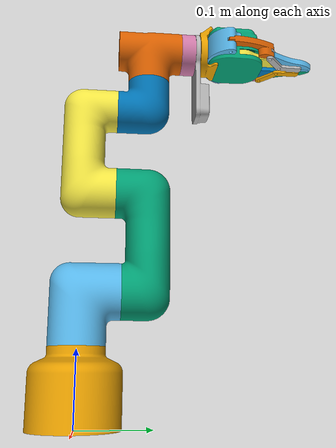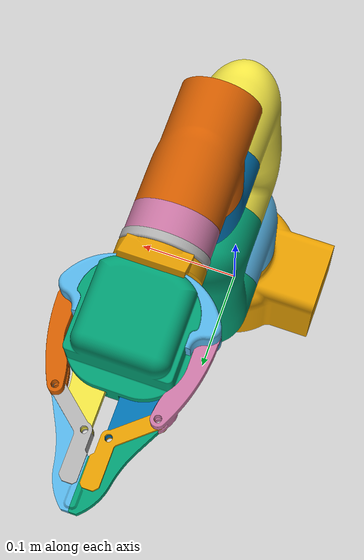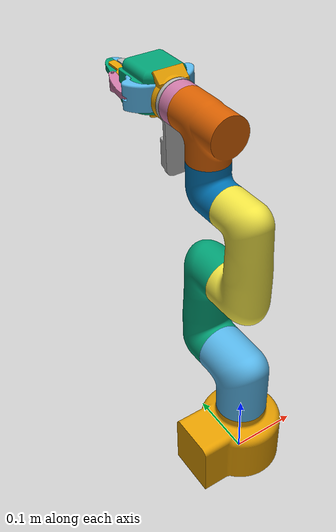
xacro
<?xml version="1.0"?>
<robot xmlns:xacro="http://www.ros.org/wiki/xacro" name="mycobot_320">
    <xacro:arg name="initial_positions_file" default="initial_positions.yaml" />

    <!-- Import mycobot_320 urdf file -->
    <xacro:include filename="$(find mycobot_with_gripper)/config/urdf/mycobot_320_m5_custom.urdf" />

    <!-- Import control_xacro -->
    <xacro:include filename="mycobot_320.ros2_control.xacro" />

    <xacro:mycobot_320_ros2_control name="FakeSystem" initial_positions_file="$(arg initial_positions_file)"/>

</robot>

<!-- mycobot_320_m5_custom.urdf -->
<robot  xmlns:xacro="http://www.ros.org/wiki/xacro" name="mycobot_320" >

<xacro:property name="width" value=".2" />

<link name="base">
  <visual>
    <geometry>
    <mesh filename="package://mycobot_with_gripper/config/urdf/base.stl"/>
    </geometry>
    <origin xyz="0 0 0" rpy="0 0 0"/>
  </visual>
  <collision>
    <geometry>
    <mesh filename="package://mycobot_with_gripper/config/urdf/base.stl"/>
      </geometry>
      <origin xyz="0 0 0" rpy="0 0 0"/>
  </collision>
</link>

<link name="link1">
  <visual>
    <geometry>
      <mesh filename="package://mycobot_with_gripper/config/urdf/link1.stl"/>
    </geometry>
    <origin xyz="0.0 0.0 -0.103" rpy="0 0 0"/>
  </visual>
  <collision>
    <geometry>
      <mesh filename="package://mycobot_with_gripper/config/urdf/link1.stl"/>
    </geometry>
    <origin xyz="0.0 0.0 -0.103" rpy="0 0 0"/>
  </collision>
</link>

<link name="link2">
  <visual>
    <geometry>
      <mesh filename="package://mycobot_with_gripper/config/urdf/link2.stl"/>
    </geometry>
    <origin xyz="0.0 -0.055 -0.1739" rpy="0 0 0"/>
  </visual>
  <collision>
    <geometry>
      <mesh filename="package://mycobot_with_gripper/config/urdf/link2.stl"/>
    </geometry>
    <origin xyz="0.0 -0.055 -0.1739" rpy="0 0 0"/>
  </collision>
</link>

<link name="link3">
  <visual>
    <geometry>
      <mesh filename="package://mycobot_with_gripper/config/urdf/link3.stl"/>
    </geometry>
    <origin xyz="0.0 -0.045 -0.3089" rpy="0 0 0"/>
  </visual>
  <collision>
    <geometry>
      <mesh filename="package://mycobot_with_gripper/config/urdf/link3.stl"/>
    </geometry>
    <origin xyz="0.0 -0.045 -0.3089" rpy="0 0 0"/>
  </collision>
</link>

<link name="link4">
  <visual>
    <geometry>
      <mesh filename="package://mycobot_with_gripper/config/urdf/link4.stl"/>
    </geometry>
    <origin xyz="0.0 -0.045 -0.4289" rpy="0 0 0"/>
  </visual>
  <collision>
      <geometry>
      <mesh filename="package://mycobot_with_gripper/config/urdf/link4.stl"/>
    </geometry>
    <origin xyz="0.0 -0.045 -0.4289" rpy="0 0 0"/>
  </collision>
</link>

<link name="link5">
  <visual>
    <geometry>
      <mesh filename="package://mycobot_with_gripper/config/urdf/link5.stl"/>
    </geometry>
    <origin xyz="0.0 -0.08878 -0.475" rpy="0 0 0"/>
  </visual>
  <collision>
    <geometry>
      <mesh filename="package://mycobot_with_gripper/config/urdf/link5.stl"/>
    </geometry>
    <origin xyz="0.0 -0.08878 -0.475" rpy="0 0 0"/>
  </collision>
</link>

<link name="link6">
  <visual>
    <geometry>
      <mesh filename="package://mycobot_with_gripper/config/urdf/link6.stl"/>
    </geometry>
    <origin xyz="0.0 -0.13428 -0.524" rpy="0 0 0"/>
  </visual>
  <collision>
    <geometry>
      <mesh filename="package://mycobot_with_gripper/config/urdf/link6.stl"/>
    </geometry>
    <origin xyz="0.0 -0.13428 -0.524" rpy="0 0 0"/>
  </collision>
</link>

<link name="camera">
  <visual>
    <origin xyz="0.0 0.0 0.0" rpy="-1.570796 0 1.570796"/>
    <geometry>
      <mesh filename="package://mycobot_with_gripper/config/urdf/camera.stl" />
    </geometry>
  </visual>
  <collision>
    <origin xyz="0.0 0.0 0.0" rpy="-1.570796 0 1.570796"/>
    <geometry>
      <mesh filename="package://mycobot_with_gripper/config/urdf/camera.stl"/>
    </geometry>
  </collision>
</link>

<link name="gripperlink">
  <visual>
    <origin xyz="0 0 0" rpy="1.570796 0 1.570796"/>
    <geometry>
      <mesh filename="package://mycobot_with_gripper/config/urdf/gripperlink.stl" />
    </geometry>
  </visual>
  <collision>
    <origin xyz="0 0 0" rpy="1.570796 0 1.570796"/>
    <geometry>
      <mesh filename="package://mycobot_with_gripper/config/urdf/gripperlink.stl" />
    </geometry>
  </collision>
</link>

<link name="gripper_holder">
  <visual>
    <origin xyz="0 0.043 -0.022" rpy="0 0 1.570796"/>
    <geometry>
      <mesh filename="package://mycobot_with_gripper/config/urdf/gripper_holder.stl" />
    </geometry>
  </visual>
  <collision>
    <origin xyz="0 0.043 -0.022" rpy="0 0 1.570796"/>
    <geometry>
      <mesh filename="package://mycobot_with_gripper/config/urdf/gripper_holder.stl" />
    </geometry>
  </collision>
</link>

<link name="hand_base_link">
  <visual>
    <origin xyz="0 0.04 -0.021" rpy="0 0 1.570796"/>
    <geometry>
      <mesh filename="package://mycobot_with_gripper/config/urdf/hand_base_link.stl" />
    </geometry>
  </visual>
  <collision>
    <origin xyz="0 0.04 -0.021" rpy="0 0 1.570796"/>
    <geometry>
      <mesh filename="package://mycobot_with_gripper/config/urdf/hand_base_link.stl" />
    </geometry>
  </collision>
</link>

<link name="hand_right_inside">
  <visual>
    <origin xyz="-0.019 -0.008 -0.006" rpy="3.141592 0 1.570796"/>
    <geometry>
      <mesh filename="package://mycobot_with_gripper/config/urdf/hand_right_inside.stl" />
    </geometry>
  </visual>
  <collision>
    <origin xyz="-0.019 -0.008 -0.006" rpy="3.141592 0 1.570796"/>
    <geometry>
      <mesh filename="package://mycobot_with_gripper/config/urdf/hand_right_inside.stl" />
    </geometry>
  </collision>
</link>

<link name="hand_left_inside">
  <visual>
    <origin xyz="0.019 -0.008 -0.006" rpy="0 0 1.570796"/>
    <geometry>
      <mesh filename="package://mycobot_with_gripper/config/urdf/hand_left_inside.stl" />
    </geometry>
  </visual>
  <collision>
    <origin xyz="0.019 -0.008 -0.006" rpy="0 0 1.570796"/>
    <geometry>
      <mesh filename="package://mycobot_with_gripper/config/urdf/hand_left_inside.stl" />
    </geometry>
  </collision>
</link>

<link name="hand_right_outside">
  <visual>
    <origin xyz="-0.045 0.014 -0.018" rpy="3.141592 0 1.570796"/>
    <geometry>
      <mesh filename="package://mycobot_with_gripper/config/urdf/hand_right_outside.stl" />
    </geometry>
  </visual>
  <collision>
    <origin xyz="-0.045 0.014 -0.018" rpy="3.141592 0 1.570796"/>
    <geometry>
      <mesh filename="package://mycobot_with_gripper/config/urdf/hand_right_outside.stl" />
    </geometry>
  </collision>
</link>

<link name="hand_left_outside">
  <visual>
    <origin xyz="0.045 0.014 -0.018" rpy="0 0 1.570796"/>
    <geometry>
      <mesh filename="package://mycobot_with_gripper/config/urdf/hand_left_outside.stl" />
    </geometry>
  </visual>
  <collision>
    <origin xyz="0.045 0.014 -0.018" rpy="0 0 1.570796"/>
    <geometry>
      <mesh filename="package://mycobot_with_gripper/config/urdf/hand_left_outside.stl" />
    </geometry>
  </collision>
</link>

<link name="hand_right_front_link">
  <visual>
    <origin xyz="-0.008 -0.068 -0.013" rpy="3.141592 0 1.570796"/>
    <geometry>
      <mesh filename="package://mycobot_with_gripper/config/urdf/hand_right_front_link.stl" />
    </geometry>
  </visual>
  <collision>
    <origin xyz="-0.008 -0.068 -0.013" rpy="3.141592 0 1.570796"/>
    <geometry>
      <mesh filename="package://mycobot_with_gripper/config/urdf/hand_right_front_link.stl" />
    </geometry>
  </collision>
</link>

<link name="hand_left_front_link">
  <visual>
    <origin xyz="0.008 -0.068 -0.013" rpy="0 0 1.570796"/>
    <geometry>
      <mesh filename="package://mycobot_with_gripper/config/urdf/hand_left_front_link.stl" />
    </geometry>
  </visual>
  <collision>
    <origin xyz="0.008 -0.068 -0.013" rpy="0 0 1.570796"/>
    <geometry>
      <mesh filename="package://mycobot_with_gripper/config/urdf/hand_left_front_link.stl" />
    </geometry>
  </collision>
</link>

<link name="hand_right_front">
  <visual>
    <origin xyz="-0.014 -0.07 0" rpy="3.141592 0 1.570796"/>
    <geometry>
      <mesh filename="package://mycobot_with_gripper/config/urdf/hand_right_front.stl" />
    </geometry>
  </visual>
  <collision>
    <origin xyz="-0.014 -0.07 0" rpy="3.141592 0 1.570796"/>
    <geometry>
      <mesh filename="package://mycobot_with_gripper/config/urdf/hand_right_front.stl" />
    </geometry>
  </collision>
</link>

<link name="hand_left_front">
  <visual>
    <origin xyz="0.014 -0.07 0" rpy="0 0 1.570796"/>
    <geometry>
      <mesh filename="package://mycobot_with_gripper/config/urdf/hand_left_front.stl" />
    </geometry>
  </visual>
  <collision>
    <origin xyz="0.014 -0.07 0" rpy="0 0 1.570796"/>
    <geometry>
      <mesh filename="package://mycobot_with_gripper/config/urdf/hand_left_front.stl" />
    </geometry>
  </collision>
</link>

  <joint name="joint2_to_joint1" type="revolute">
    <axis xyz="0 0 1"/>
    <limit effort = "1000.0" lower = "-2.87" upper = "2.87" velocity = "0"/>
    <parent link="base"/>
    <child link="link1"/>
    <origin xyz="0.0 0.0 0.103" rpy="0 0 0"/>
  </joint>

  <joint name="joint3_to_joint2" type="revolute">
    <axis xyz="0 -1 0"/>
    <limit effort = "1000.0" lower = "-2.879" upper = "2.879" velocity = "0"/>
    <parent link="link1"/>
    <child link="link2"/>
    <origin xyz="0.0 0.055 0.0709" rpy="0 0 0"/>
  </joint>

  <joint name="joint4_to_joint3" type="revolute">
    <axis xyz=" 0 1 0"/>
    <limit effort = "1000.0" lower = "-2.879" upper = "2.879" velocity = "0"/>
    <parent link="link2"/>
    <child link="link3"/>
    <origin xyz="-0.0 -0.01 0.135" rpy="0 0 0"/>
  </joint>

  <joint name="joint5_to_joint4" type="revolute">
    <axis xyz=" 0 -1 0"/>
    <limit effort = "1000.0" lower = "-2.879" upper = "2.879" velocity = "0"/>
    <parent link="link3"/>
    <child link="link4"/>
    <origin xyz="0.0 0.0 0.12" rpy="0 0 0"/>
  </joint>

  <joint name="joint6_to_joint5" type="revolute">
    <axis xyz="0 0 1"/>
    <limit effort = "1000.0" lower = "-2.879" upper = "2.879" velocity = "0"/>
    <parent link="link4"/>
    <child link="link5"/>
    <origin xyz="0.0 0.04378 0.0461" rpy="0 0 0"/>
  </joint>

  <joint name="joint6output_to_joint6" type="revolute">
    <axis xyz="0 1 0"/>
    <limit effort = "1000.0" lower = "-3.05" upper = "3.05" velocity = "0"/>
    <parent link="link5"/>
    <child link="link6"/>
    <origin xyz="0.0 0.0455 0.049" rpy="0 0 0"/>
  </joint>

  <joint name="camera_joint" type="fixed">
    <origin xyz="0.0 0.02 0.0" rpy="0 0 0"/>
    <parent link="link6"/>
    <child link="camera"/>
  </joint>

<joint name="gripperlink joint" type="fixed">
  <origin xyz="0.0 0.007 0.0" rpy="0 0 0"/>
  <parent link="camera"/>
  <child link="gripperlink"/>
</joint>

<joint name="gripper_holder_joint" type="fixed">
  <origin xyz="0.0 0.01 0.0" rpy="0 0 0"/>
  <parent link="gripperlink"/>
  <child link="gripper_holder"/>
</joint>

<joint name="hand_base_joint" type="fixed">
  <origin xyz="0.0 0.003 0.0" rpy="0 0 0"/>
  <parent link="gripper_holder"/>
  <child link="hand_base_link"/>
</joint>

<joint name="right_inside_joint" type="revolute">
  <origin xyz="0.019 0.047 -0.015" rpy="0 0 0"/>
  <limit effort = "1000.0" lower = "-0.906" upper = "0" velocity = "0"/>
  <parent link="hand_base_link"/>
  <child link="hand_right_inside"/>
  <axis xyz="0.0 0.0 1.0"/>
</joint>

<joint name="left_inside_joint" type="continuous">
  <origin xyz="-0.019 0.047 -0.015" rpy="0 0 0"/>
  <parent link="hand_base_link"/>
  <child link="hand_left_inside"/>
  <mimic joint="right_inside_joint" multiplier="-1" offset="0" />
  <axis xyz="0.0 0.0 1.0"/>
</joint>

<joint name="right_outside_joint" type="continuous">
  <origin xyz="0.045 0.029 -0.002" rpy="0 0 0"/>
  <parent link="gripper_holder"/>
  <child link="hand_right_outside"/>
  <mimic joint="right_inside_joint" multiplier="1" offset="0" />
  <axis xyz="0.0 0.0 1.0"/>
</joint>

<joint name="left_outside_joint" type="continuous">
  <origin xyz="-0.045 0.029 -0.002" rpy="0 0 0"/>
  <parent link="gripper_holder"/>
  <child link="hand_left_outside"/>
  <mimic joint="left_inside_joint" multiplier="1" offset="0" />
  <axis xyz="0.0 0.0 1.0"/>
</joint>

<joint name="left_front_joint_inside" type="continuous">
  <origin xyz="0.011 0.06 0.008" rpy="0 0 0"/>
  <parent link="hand_left_inside"/>
  <child link="hand_left_front_link"/>
  <mimic joint="left_inside_joint" multiplier="-1" offset="0" />
  <axis xyz="0.0 0.0 1.0"/>
</joint>

<joint name="right_front_joint_inside" type="continuous">
  <origin xyz="-0.011 0.06 0.008" rpy="0 0 0"/>
  <parent link="hand_right_inside"/>
  <child link="hand_right_front_link"/>
  <mimic joint="right_inside_joint" multiplier="-1" offset="0" />
  <axis xyz="0.0 0.0 1.0"/>
</joint>

<joint name="right finger" type="fixed">
  <origin xyz="0.006 0.002 -0.012" rpy="0 0 0"/>
  <parent link="hand_right_front_link"/>
  <child link="hand_right_front"/>
</joint>

<joint name="hand_left_finger" type="fixed">
  <origin xyz="-0.006 0.002 -0.012" rpy="0 0 0"/>
  <parent link="hand_left_front_link"/>
  <child link="hand_left_front"/>
</joint>

</robot>
